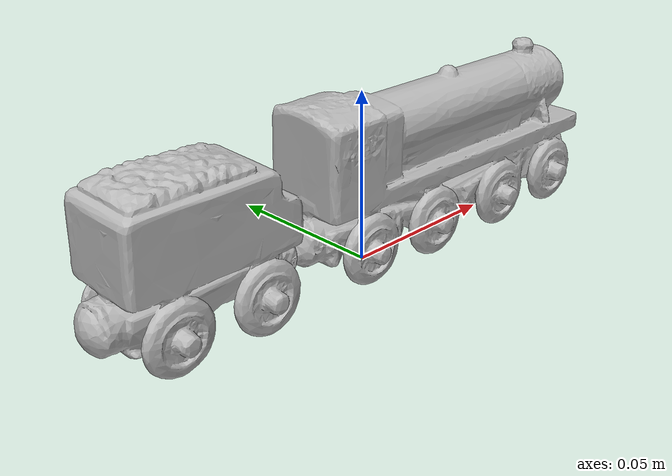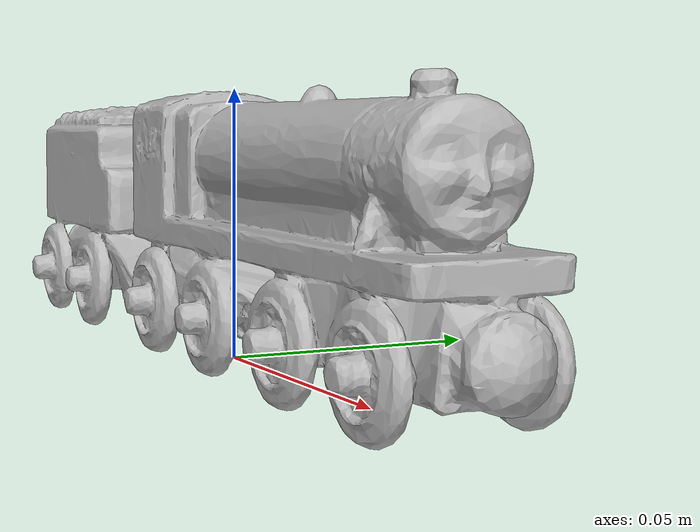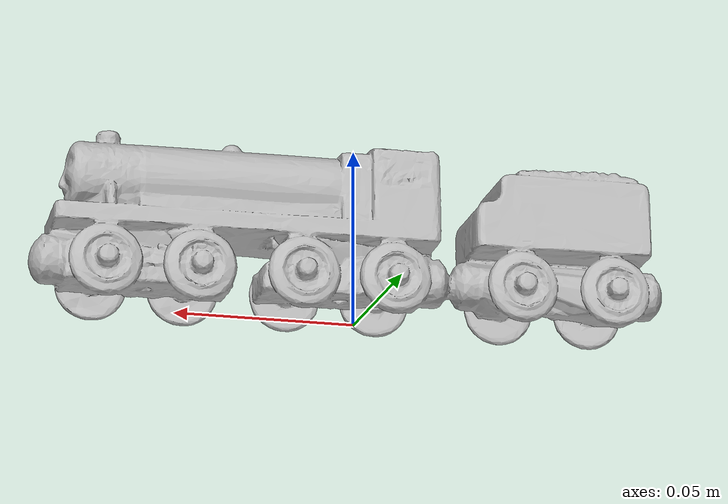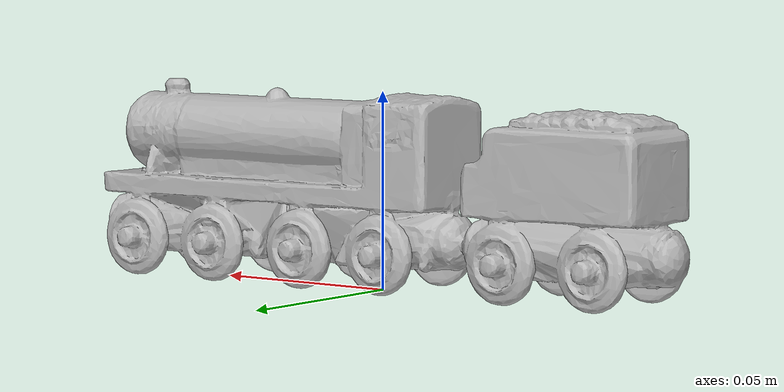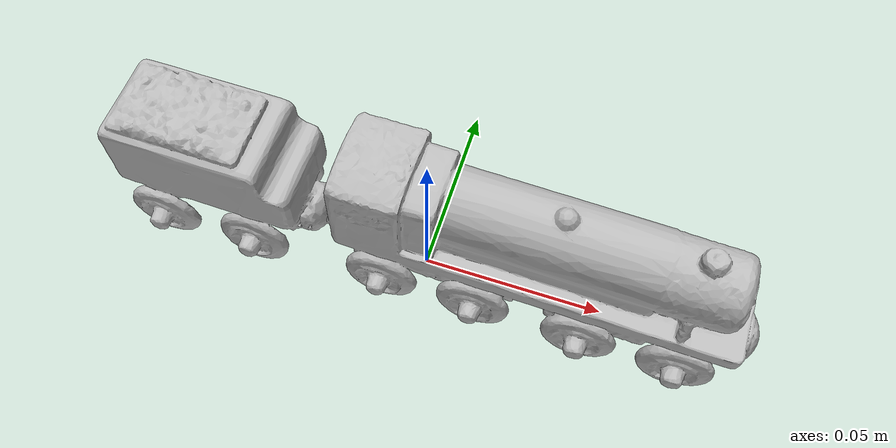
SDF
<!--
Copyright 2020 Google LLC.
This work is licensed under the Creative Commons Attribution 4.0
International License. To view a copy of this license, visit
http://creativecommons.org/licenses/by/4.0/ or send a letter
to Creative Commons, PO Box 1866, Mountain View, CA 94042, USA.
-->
<?xml version="1.0" ?>
<sdf version="1.6">
  <model name="Thomas_Friends_Woodan_Railway_Henry">
    <link name="link_0">
      <visual name="visual">
        <geometry>
          <mesh>
            <uri>meshes/model.obj</uri>
          </mesh>
        </geometry>
      </visual>
      <collision name="collision_0">
        <geometry>
          <mesh>
            <uri>meshes/model.obj</uri>
          </mesh>
        </geometry>
      </collision>
    </link>
  </model>
</sdf>
